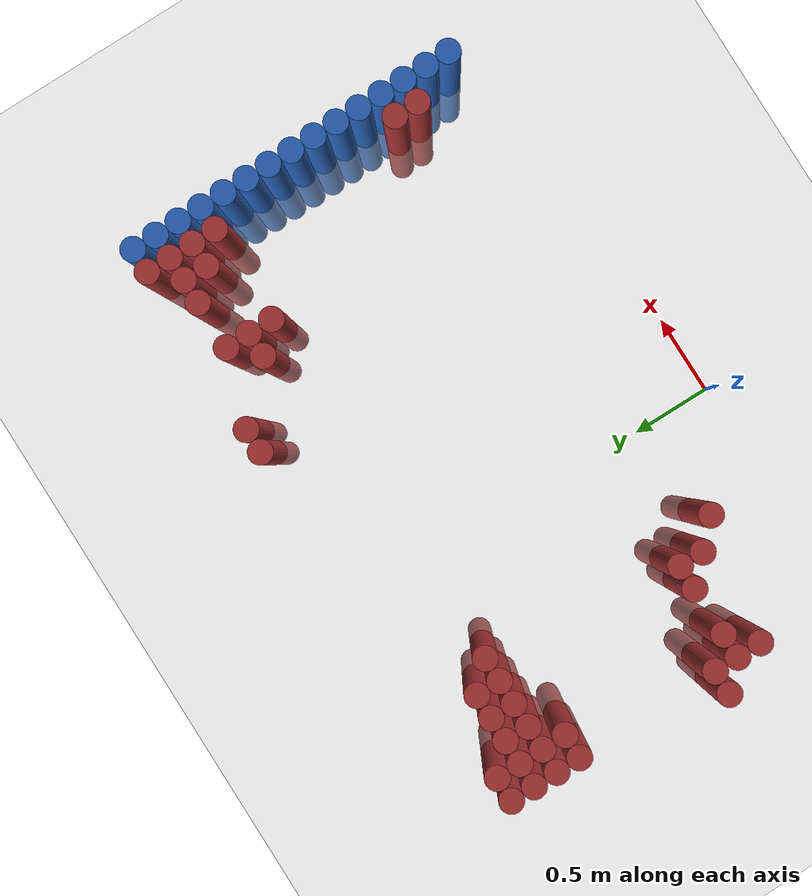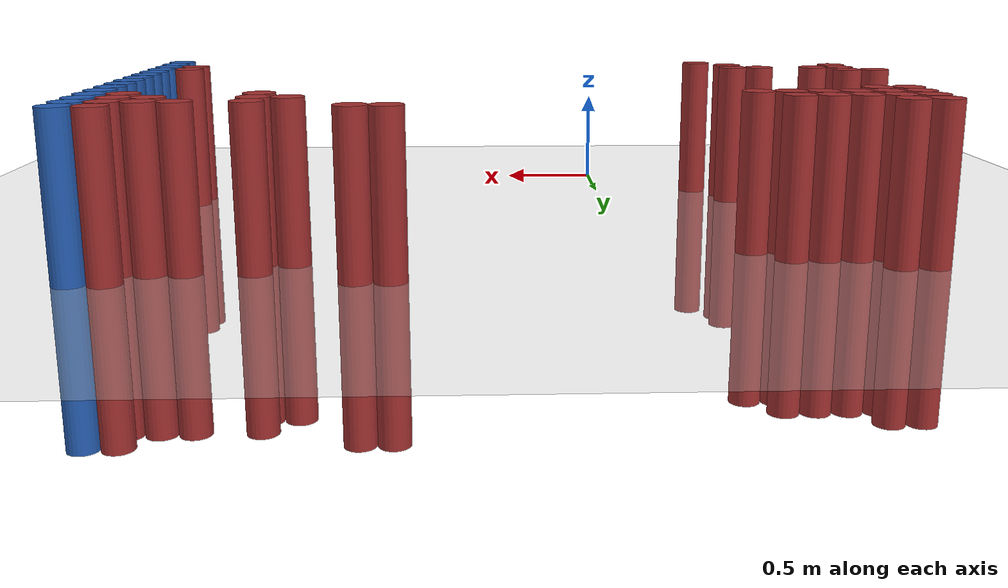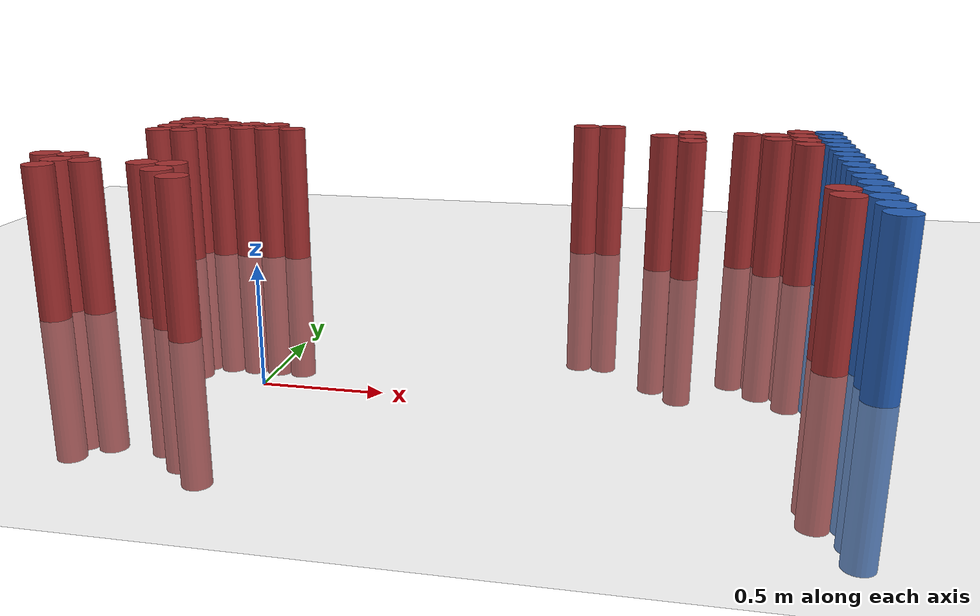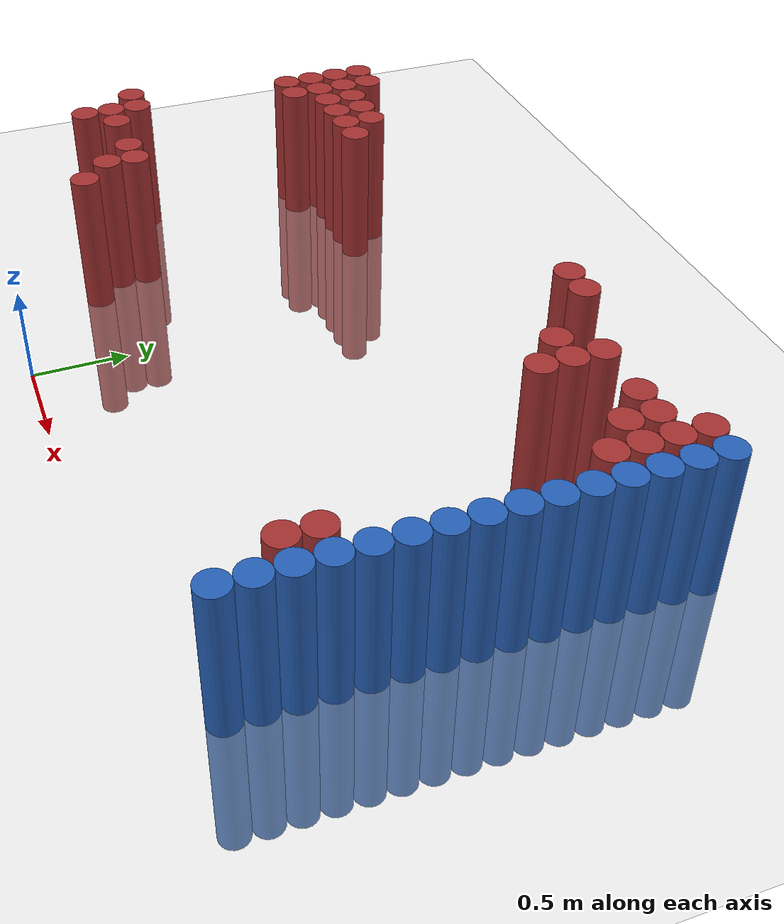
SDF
<sdf version="1.6">
 <world name="default">
  <model name="ground_plane">
   <static>1</static>
   <link name="link">
    <collision name="collision">
     <geometry><plane><normal>0 0 1</normal><size>100 100</size></plane></geometry>
     <surface><friction><ode><mu>100</mu><mu2>50</mu2></ode></friction></surface>
    </collision>
    <visual name="visual">
     <cast_shadows>0</cast_shadows>
     <geometry><plane><normal>0 0 1</normal><size>100 100</size></plane></geometry>
     <material>
      <script><uri>file://media/materials/scripts/gazebo.material</uri><name>Gazebo/Grey</name></script>
     </material>
    </visual>
   </link>
  </model>
  <model name="unit_cylinder_154">
   <static>1</static>
   <pose>-1.475000 0.925000 0.000000 0.000000 0.000000 0.000000</pose>
   <link name="link">
    <inertial>
     <mass>1</mass>
     <inertia><ixx>0.145833</ixx><ixy>0</ixy><ixz>0</ixz><iyy>0.145833</iyy><iyz>0</iyz><izz>0.125</izz></inertia>
    </inertial>
    <collision name="collision">
     <geometry><cylinder><radius>0.075000</radius><length>1.5</length></cylinder></geometry>
    </collision>
    <visual name="visual">
     <geometry><cylinder><radius>0.075000</radius><length>1.5</length></cylinder></geometry>
     <material>
      <ambient>0.648000 0.192000 0.192000 1</ambient>
      <diffuse>0.648000 0.192000 0.192000 1</diffuse>
     </material>
     <material>
      <script><name>Gazebo/Grey</name><uri>file://media/materials/scripts/gazebo.material</uri></script>
     </material>
    </visual>
   </link>
  </model>
  <model name="unit_cylinder_161">
   <static>1</static>
   <pose>-1.325000 0.625000 0.000000 0.000000 0.000000 0.000000</pose>
   <link name="link">
    <inertial>
     <mass>1</mass>
     <inertia><ixx>0.145833</ixx><ixy>0</ixy><ixz>0</ixz><iyy>0.145833</iyy><iyz>0</iyz><izz>0.125</izz></inertia>
    </inertial>
    <collision name="collision">
     <geometry><cylinder><radius>0.075000</radius><length>1.5</length></cylinder></geometry>
    </collision>
    <visual name="visual">
     <geometry><cylinder><radius>0.075000</radius><length>1.5</length></cylinder></geometry>
     <material>
      <ambient>0.648000 0.192000 0.192000 1</ambient>
      <diffuse>0.648000 0.192000 0.192000 1</diffuse>
     </material>
     <material>
      <script><name>Gazebo/Grey</name><uri>file://media/materials/scripts/gazebo.material</uri></script>
     </material>
    </visual>
   </link>
  </model>
  <model name="unit_cylinder_162">
   <static>1</static>
   <pose>-1.325000 0.775000 0.000000 0.000000 0.000000 0.000000</pose>
   <link name="link">
    <inertial>
     <mass>1</mass>
     <inertia><ixx>0.145833</ixx><ixy>0</ixy><ixz>0</ixz><iyy>0.145833</iyy><iyz>0</iyz><izz>0.125</izz></inertia>
    </inertial>
    <collision name="collision">
     <geometry><cylinder><radius>0.075000</radius><length>1.5</length></cylinder></geometry>
    </collision>
    <visual name="visual">
     <geometry><cylinder><radius>0.075000</radius><length>1.5</length></cylinder></geometry>
     <material>
      <ambient>0.648000 0.192000 0.192000 1</ambient>
      <diffuse>0.648000 0.192000 0.192000 1</diffuse>
     </material>
     <material>
      <script><name>Gazebo/Grey</name><uri>file://media/materials/scripts/gazebo.material</uri></script>
     </material>
    </visual>
   </link>
  </model>
  <model name="unit_cylinder_163">
   <static>1</static>
   <pose>-1.325000 0.925000 0.000000 0.000000 0.000000 0.000000</pose>
   <link name="link">
    <inertial>
     <mass>1</mass>
     <inertia><ixx>0.145833</ixx><ixy>0</ixy><ixz>0</ixz><iyy>0.145833</iyy><iyz>0</iyz><izz>0.125</izz></inertia>
    </inertial>
    <collision name="collision">
     <geometry><cylinder><radius>0.075000</radius><length>1.5</length></cylinder></geometry>
    </collision>
    <visual name="visual">
     <geometry><cylinder><radius>0.075000</radius><length>1.5</length></cylinder></geometry>
     <material>
      <ambient>0.648000 0.192000 0.192000 1</ambient>
      <diffuse>0.648000 0.192000 0.192000 1</diffuse>
     </material>
     <material>
      <script><name>Gazebo/Grey</name><uri>file://media/materials/scripts/gazebo.material</uri></script>
     </material>
    </visual>
   </link>
  </model>
  <model name="unit_cylinder_164">
   <static>1</static>
   <pose>-1.325000 1.825000 0.000000 0.000000 0.000000 0.000000</pose>
   <link name="link">
    <inertial>
     <mass>1</mass>
     <inertia><ixx>0.145833</ixx><ixy>0</ixy><ixz>0</ixz><iyy>0.145833</iyy><iyz>0</iyz><izz>0.125</izz></inertia>
    </inertial>
    <collision name="collision">
     <geometry><cylinder><radius>0.075000</radius><length>1.5</length></cylinder></geometry>
    </collision>
    <visual name="visual">
     <geometry><cylinder><radius>0.075000</radius><length>1.5</length></cylinder></geometry>
     <material>
      <ambient>0.648000 0.192000 0.192000 1</ambient>
      <diffuse>0.648000 0.192000 0.192000 1</diffuse>
     </material>
     <material>
      <script><name>Gazebo/Grey</name><uri>file://media/materials/scripts/gazebo.material</uri></script>
     </material>
    </visual>
   </link>
  </model>
  <model name="unit_cylinder_165">
   <static>1</static>
   <pose>-1.325000 1.975000 0.000000 0.000000 0.000000 0.000000</pose>
   <link name="link">
    <inertial>
     <mass>1</mass>
     <inertia><ixx>0.145833</ixx><ixy>0</ixy><ixz>0</ixz><iyy>0.145833</iyy><iyz>0</iyz><izz>0.125</izz></inertia>
    </inertial>
    <collision name="collision">
     <geometry><cylinder><radius>0.075000</radius><length>1.5</length></cylinder></geometry>
    </collision>
    <visual name="visual">
     <geometry><cylinder><radius>0.075000</radius><length>1.5</length></cylinder></geometry>
     <material>
      <ambient>0.648000 0.192000 0.192000 1</ambient>
      <diffuse>0.648000 0.192000 0.192000 1</diffuse>
     </material>
     <material>
      <script><name>Gazebo/Grey</name><uri>file://media/materials/scripts/gazebo.material</uri></script>
     </material>
    </visual>
   </link>
  </model>
  <model name="unit_cylinder_166">
   <static>1</static>
   <pose>-1.325000 2.125000 0.000000 0.000000 0.000000 0.000000</pose>
   <link name="link">
    <inertial>
     <mass>1</mass>
     <inertia><ixx>0.145833</ixx><ixy>0</ixy><ixz>0</ixz><iyy>0.145833</iyy><iyz>0</iyz><izz>0.125</izz></inertia>
    </inertial>
    <collision name="collision">
     <geometry><cylinder><radius>0.075000</radius><length>1.5</length></cylinder></geometry>
    </collision>
    <visual name="visual">
     <geometry><cylinder><radius>0.075000</radius><length>1.5</length></cylinder></geometry>
     <material>
      <ambient>0.648000 0.192000 0.192000 1</ambient>
      <diffuse>0.648000 0.192000 0.192000 1</diffuse>
     </material>
     <material>
      <script><name>Gazebo/Grey</name><uri>file://media/materials/scripts/gazebo.material</uri></script>
     </material>
    </visual>
   </link>
  </model>
  <model name="unit_cylinder_167">
   <static>1</static>
   <pose>-1.325000 2.275000 0.000000 0.000000 0.000000 0.000000</pose>
   <link name="link">
    <inertial>
     <mass>1</mass>
     <inertia><ixx>0.145833</ixx><ixy>0</ixy><ixz>0</ixz><iyy>0.145833</iyy><iyz>0</iyz><izz>0.125</izz></inertia>
    </inertial>
    <collision name="collision">
     <geometry><cylinder><radius>0.075000</radius><length>1.5</length></cylinder></geometry>
    </collision>
    <visual name="visual">
     <geometry><cylinder><radius>0.075000</radius><length>1.5</length></cylinder></geometry>
     <material>
      <ambient>0.648000 0.192000 0.192000 1</ambient>
      <diffuse>0.648000 0.192000 0.192000 1</diffuse>
     </material>
     <material>
      <script><name>Gazebo/Grey</name><uri>file://media/materials/scripts/gazebo.material</uri></script>
     </material>
    </visual>
   </link>
  </model>
  <model name="unit_cylinder_170">
   <static>1</static>
   <pose>-1.175000 0.775000 0.000000 0.000000 0.000000 0.000000</pose>
   <link name="link">
    <inertial>
     <mass>1</mass>
     <inertia><ixx>0.145833</ixx><ixy>0</ixy><ixz>0</ixz><iyy>0.145833</iyy><iyz>0</iyz><izz>0.125</izz></inertia>
    </inertial>
    <collision name="collision">
     <geometry><cylinder><radius>0.075000</radius><length>1.5</length></cylinder></geometry>
    </collision>
    <visual name="visual">
     <geometry><cylinder><radius>0.075000</radius><length>1.5</length></cylinder></geometry>
     <material>
      <ambient>0.648000 0.192000 0.192000 1</ambient>
      <diffuse>0.648000 0.192000 0.192000 1</diffuse>
     </material>
     <material>
      <script><name>Gazebo/Grey</name><uri>file://media/materials/scripts/gazebo.material</uri></script>
     </material>
    </visual>
   </link>
  </model>
  <model name="unit_cylinder_171">
   <static>1</static>
   <pose>-1.175000 1.825000 0.000000 0.000000 0.000000 0.000000</pose>
   <link name="link">
    <inertial>
     <mass>1</mass>
     <inertia><ixx>0.145833</ixx><ixy>0</ixy><ixz>0</ixz><iyy>0.145833</iyy><iyz>0</iyz><izz>0.125</izz></inertia>
    </inertial>
    <collision name="collision">
     <geometry><cylinder><radius>0.075000</radius><length>1.5</length></cylinder></geometry>
    </collision>
    <visual name="visual">
     <geometry><cylinder><radius>0.075000</radius><length>1.5</length></cylinder></geometry>
     <material>
      <ambient>0.648000 0.192000 0.192000 1</ambient>
      <diffuse>0.648000 0.192000 0.192000 1</diffuse>
     </material>
     <material>
      <script><name>Gazebo/Grey</name><uri>file://media/materials/scripts/gazebo.material</uri></script>
     </material>
    </visual>
   </link>
  </model>
  <model name="unit_cylinder_172">
   <static>1</static>
   <pose>-1.175000 1.975000 0.000000 0.000000 0.000000 0.000000</pose>
   <link name="link">
    <inertial>
     <mass>1</mass>
     <inertia><ixx>0.145833</ixx><ixy>0</ixy><ixz>0</ixz><iyy>0.145833</iyy><iyz>0</iyz><izz>0.125</izz></inertia>
    </inertial>
    <collision name="collision">
     <geometry><cylinder><radius>0.075000</radius><length>1.5</length></cylinder></geometry>
    </collision>
    <visual name="visual">
     <geometry><cylinder><radius>0.075000</radius><length>1.5</length></cylinder></geometry>
     <material>
      <ambient>0.648000 0.192000 0.192000 1</ambient>
      <diffuse>0.648000 0.192000 0.192000 1</diffuse>
     </material>
     <material>
      <script><name>Gazebo/Grey</name><uri>file://media/materials/scripts/gazebo.material</uri></script>
     </material>
    </visual>
   </link>
  </model>
  <model name="unit_cylinder_173">
   <static>1</static>
   <pose>-1.175000 2.125000 0.000000 0.000000 0.000000 0.000000</pose>
   <link name="link">
    <inertial>
     <mass>1</mass>
     <inertia><ixx>0.145833</ixx><ixy>0</ixy><ixz>0</ixz><iyy>0.145833</iyy><iyz>0</iyz><izz>0.125</izz></inertia>
    </inertial>
    <collision name="collision">
     <geometry><cylinder><radius>0.075000</radius><length>1.5</length></cylinder></geometry>
    </collision>
    <visual name="visual">
     <geometry><cylinder><radius>0.075000</radius><length>1.5</length></cylinder></geometry>
     <material>
      <ambient>0.648000 0.192000 0.192000 1</ambient>
      <diffuse>0.648000 0.192000 0.192000 1</diffuse>
     </material>
     <material>
      <script><name>Gazebo/Grey</name><uri>file://media/materials/scripts/gazebo.material</uri></script>
     </material>
    </visual>
   </link>
  </model>
  <model name="unit_cylinder_174">
   <static>1</static>
   <pose>-1.175000 2.275000 0.000000 0.000000 0.000000 0.000000</pose>
   <link name="link">
    <inertial>
     <mass>1</mass>
     <inertia><ixx>0.145833</ixx><ixy>0</ixy><ixz>0</ixz><iyy>0.145833</iyy><iyz>0</iyz><izz>0.125</izz></inertia>
    </inertial>
    <collision name="collision">
     <geometry><cylinder><radius>0.075000</radius><length>1.5</length></cylinder></geometry>
    </collision>
    <visual name="visual">
     <geometry><cylinder><radius>0.075000</radius><length>1.5</length></cylinder></geometry>
     <material>
      <ambient>0.648000 0.192000 0.192000 1</ambient>
      <diffuse>0.648000 0.192000 0.192000 1</diffuse>
     </material>
     <material>
      <script><name>Gazebo/Grey</name><uri>file://media/materials/scripts/gazebo.material</uri></script>
     </material>
    </visual>
   </link>
  </model>
  <model name="unit_cylinder_175">
   <static>1</static>
   <pose>-1.025000 1.975000 0.000000 0.000000 0.000000 0.000000</pose>
   <link name="link">
    <inertial>
     <mass>1</mass>
     <inertia><ixx>0.145833</ixx><ixy>0</ixy><ixz>0</ixz><iyy>0.145833</iyy><iyz>0</iyz><izz>0.125</izz></inertia>
    </inertial>
    <collision name="collision">
     <geometry><cylinder><radius>0.075000</radius><length>1.5</length></cylinder></geometry>
    </collision>
    <visual name="visual">
     <geometry><cylinder><radius>0.075000</radius><length>1.5</length></cylinder></geometry>
     <material>
      <ambient>0.648000 0.192000 0.192000 1</ambient>
      <diffuse>0.648000 0.192000 0.192000 1</diffuse>
     </material>
     <material>
      <script><name>Gazebo/Grey</name><uri>file://media/materials/scripts/gazebo.material</uri></script>
     </material>
    </visual>
   </link>
  </model>
  <model name="unit_cylinder_176">
   <static>1</static>
   <pose>-1.025000 2.125000 0.000000 0.000000 0.000000 0.000000</pose>
   <link name="link">
    <inertial>
     <mass>1</mass>
     <inertia><ixx>0.145833</ixx><ixy>0</ixy><ixz>0</ixz><iyy>0.145833</iyy><iyz>0</iyz><izz>0.125</izz></inertia>
    </inertial>
    <collision name="collision">
     <geometry><cylinder><radius>0.075000</radius><length>1.5</length></cylinder></geometry>
    </collision>
    <visual name="visual">
     <geometry><cylinder><radius>0.075000</radius><length>1.5</length></cylinder></geometry>
     <material>
      <ambient>0.648000 0.192000 0.192000 1</ambient>
      <diffuse>0.648000 0.192000 0.192000 1</diffuse>
     </material>
     <material>
      <script><name>Gazebo/Grey</name><uri>file://media/materials/scripts/gazebo.material</uri></script>
     </material>
    </visual>
   </link>
  </model>
  <model name="unit_cylinder_182">
   <static>1</static>
   <pose>-0.875000 0.775000 0.000000 0.000000 0.000000 0.000000</pose>
   <link name="link">
    <inertial>
     <mass>1</mass>
     <inertia><ixx>0.145833</ixx><ixy>0</ixy><ixz>0</ixz><iyy>0.145833</iyy><iyz>0</iyz><izz>0.125</izz></inertia>
    </inertial>
    <collision name="collision">
     <geometry><cylinder><radius>0.075000</radius><length>1.5</length></cylinder></geometry>
    </collision>
    <visual name="visual">
     <geometry><cylinder><radius>0.075000</radius><length>1.5</length></cylinder></geometry>
     <material>
      <ambient>0.648000 0.192000 0.192000 1</ambient>
      <diffuse>0.648000 0.192000 0.192000 1</diffuse>
     </material>
     <material>
      <script><name>Gazebo/Grey</name><uri>file://media/materials/scripts/gazebo.material</uri></script>
     </material>
    </visual>
   </link>
  </model>
  <model name="unit_cylinder_183">
   <static>1</static>
   <pose>-0.875000 1.975000 0.000000 0.000000 0.000000 0.000000</pose>
   <link name="link">
    <inertial>
     <mass>1</mass>
     <inertia><ixx>0.145833</ixx><ixy>0</ixy><ixz>0</ixz><iyy>0.145833</iyy><iyz>0</iyz><izz>0.125</izz></inertia>
    </inertial>
    <collision name="collision">
     <geometry><cylinder><radius>0.075000</radius><length>1.5</length></cylinder></geometry>
    </collision>
    <visual name="visual">
     <geometry><cylinder><radius>0.075000</radius><length>1.5</length></cylinder></geometry>
     <material>
      <ambient>0.648000 0.192000 0.192000 1</ambient>
      <diffuse>0.648000 0.192000 0.192000 1</diffuse>
     </material>
     <material>
      <script><name>Gazebo/Grey</name><uri>file://media/materials/scripts/gazebo.material</uri></script>
     </material>
    </visual>
   </link>
  </model>
  <model name="unit_cylinder_184">
   <static>1</static>
   <pose>-0.875000 2.125000 0.000000 0.000000 0.000000 0.000000</pose>
   <link name="link">
    <inertial>
     <mass>1</mass>
     <inertia><ixx>0.145833</ixx><ixy>0</ixy><ixz>0</ixz><iyy>0.145833</iyy><iyz>0</iyz><izz>0.125</izz></inertia>
    </inertial>
    <collision name="collision">
     <geometry><cylinder><radius>0.075000</radius><length>1.5</length></cylinder></geometry>
    </collision>
    <visual name="visual">
     <geometry><cylinder><radius>0.075000</radius><length>1.5</length></cylinder></geometry>
     <material>
      <ambient>0.648000 0.192000 0.192000 1</ambient>
      <diffuse>0.648000 0.192000 0.192000 1</diffuse>
     </material>
     <material>
      <script><name>Gazebo/Grey</name><uri>file://media/materials/scripts/gazebo.material</uri></script>
     </material>
    </visual>
   </link>
  </model>
  <model name="unit_cylinder_190">
   <static>1</static>
   <pose>-0.725000 0.625000 0.000000 0.000000 0.000000 0.000000</pose>
   <link name="link">
    <inertial>
     <mass>1</mass>
     <inertia><ixx>0.145833</ixx><ixy>0</ixy><ixz>0</ixz><iyy>0.145833</iyy><iyz>0</iyz><izz>0.125</izz></inertia>
    </inertial>
    <collision name="collision">
     <geometry><cylinder><radius>0.075000</radius><length>1.5</length></cylinder></geometry>
    </collision>
    <visual name="visual">
     <geometry><cylinder><radius>0.075000</radius><length>1.5</length></cylinder></geometry>
     <material>
      <ambient>0.648000 0.192000 0.192000 1</ambient>
      <diffuse>0.648000 0.192000 0.192000 1</diffuse>
     </material>
     <material>
      <script><name>Gazebo/Grey</name><uri>file://media/materials/scripts/gazebo.material</uri></script>
     </material>
    </visual>
   </link>
  </model>
  <model name="unit_cylinder_191">
   <static>1</static>
   <pose>-0.725000 0.775000 0.000000 0.000000 0.000000 0.000000</pose>
   <link name="link">
    <inertial>
     <mass>1</mass>
     <inertia><ixx>0.145833</ixx><ixy>0</ixy><ixz>0</ixz><iyy>0.145833</iyy><iyz>0</iyz><izz>0.125</izz></inertia>
    </inertial>
    <collision name="collision">
     <geometry><cylinder><radius>0.075000</radius><length>1.5</length></cylinder></geometry>
    </collision>
    <visual name="visual">
     <geometry><cylinder><radius>0.075000</radius><length>1.5</length></cylinder></geometry>
     <material>
      <ambient>0.648000 0.192000 0.192000 1</ambient>
      <diffuse>0.648000 0.192000 0.192000 1</diffuse>
     </material>
     <material>
      <script><name>Gazebo/Grey</name><uri>file://media/materials/scripts/gazebo.material</uri></script>
     </material>
    </visual>
   </link>
  </model>
  <model name="unit_cylinder_192">
   <static>1</static>
   <pose>-0.725000 1.975000 0.000000 0.000000 0.000000 0.000000</pose>
   <link name="link">
    <inertial>
     <mass>1</mass>
     <inertia><ixx>0.145833</ixx><ixy>0</ixy><ixz>0</ixz><iyy>0.145833</iyy><iyz>0</iyz><izz>0.125</izz></inertia>
    </inertial>
    <collision name="collision">
     <geometry><cylinder><radius>0.075000</radius><length>1.5</length></cylinder></geometry>
    </collision>
    <visual name="visual">
     <geometry><cylinder><radius>0.075000</radius><length>1.5</length></cylinder></geometry>
     <material>
      <ambient>0.648000 0.192000 0.192000 1</ambient>
      <diffuse>0.648000 0.192000 0.192000 1</diffuse>
     </material>
     <material>
      <script><name>Gazebo/Grey</name><uri>file://media/materials/scripts/gazebo.material</uri></script>
     </material>
    </visual>
   </link>
  </model>
  <model name="unit_cylinder_193">
   <static>1</static>
   <pose>-0.725000 2.125000 0.000000 0.000000 0.000000 0.000000</pose>
   <link name="link">
    <inertial>
     <mass>1</mass>
     <inertia><ixx>0.145833</ixx><ixy>0</ixy><ixz>0</ixz><iyy>0.145833</iyy><iyz>0</iyz><izz>0.125</izz></inertia>
    </inertial>
    <collision name="collision">
     <geometry><cylinder><radius>0.075000</radius><length>1.5</length></cylinder></geometry>
    </collision>
    <visual name="visual">
     <geometry><cylinder><radius>0.075000</radius><length>1.5</length></cylinder></geometry>
     <material>
      <ambient>0.648000 0.192000 0.192000 1</ambient>
      <diffuse>0.648000 0.192000 0.192000 1</diffuse>
     </material>
     <material>
      <script><name>Gazebo/Grey</name><uri>file://media/materials/scripts/gazebo.material</uri></script>
     </material>
    </visual>
   </link>
  </model>
  <model name="unit_cylinder_196">
   <static>1</static>
   <pose>-0.575000 0.475000 0.000000 0.000000 0.000000 0.000000</pose>
   <link name="link">
    <inertial>
     <mass>1</mass>
     <inertia><ixx>0.145833</ixx><ixy>0</ixy><ixz>0</ixz><iyy>0.145833</iyy><iyz>0</iyz><izz>0.125</izz></inertia>
    </inertial>
    <collision name="collision">
     <geometry><cylinder><radius>0.075000</radius><length>1.5</length></cylinder></geometry>
    </collision>
    <visual name="visual">
     <geometry><cylinder><radius>0.075000</radius><length>1.5</length></cylinder></geometry>
     <material>
      <ambient>0.648000 0.192000 0.192000 1</ambient>
      <diffuse>0.648000 0.192000 0.192000 1</diffuse>
     </material>
     <material>
      <script><name>Gazebo/Grey</name><uri>file://media/materials/scripts/gazebo.material</uri></script>
     </material>
    </visual>
   </link>
  </model>
  <model name="unit_cylinder_197">
   <static>1</static>
   <pose>-0.575000 1.975000 0.000000 0.000000 0.000000 0.000000</pose>
   <link name="link">
    <inertial>
     <mass>1</mass>
     <inertia><ixx>0.145833</ixx><ixy>0</ixy><ixz>0</ixz><iyy>0.145833</iyy><iyz>0</iyz><izz>0.125</izz></inertia>
    </inertial>
    <collision name="collision">
     <geometry><cylinder><radius>0.075000</radius><length>1.5</length></cylinder></geometry>
    </collision>
    <visual name="visual">
     <geometry><cylinder><radius>0.075000</radius><length>1.5</length></cylinder></geometry>
     <material>
      <ambient>0.648000 0.192000 0.192000 1</ambient>
      <diffuse>0.648000 0.192000 0.192000 1</diffuse>
     </material>
     <material>
      <script><name>Gazebo/Grey</name><uri>file://media/materials/scripts/gazebo.material</uri></script>
     </material>
    </visual>
   </link>
  </model>
  <model name="unit_cylinder_214">
   <static>1</static>
   <pose>1.075000 2.425000 0.000000 0.000000 0.000000 0.000000</pose>
   <link name="link">
    <inertial>
     <mass>1</mass>
     <inertia><ixx>0.145833</ixx><ixy>0</ixy><ixz>0</ixz><iyy>0.145833</iyy><iyz>0</iyz><izz>0.125</izz></inertia>
    </inertial>
    <collision name="collision">
     <geometry><cylinder><radius>0.075000</radius><length>1.5</length></cylinder></geometry>
    </collision>
    <visual name="visual">
     <geometry><cylinder><radius>0.075000</radius><length>1.5</length></cylinder></geometry>
     <material>
      <ambient>0.648000 0.192000 0.192000 1</ambient>
      <diffuse>0.648000 0.192000 0.192000 1</diffuse>
     </material>
     <material>
      <script><name>Gazebo/Grey</name><uri>file://media/materials/scripts/gazebo.material</uri></script>
     </material>
    </visual>
   </link>
  </model>
  <model name="unit_cylinder_216">
   <static>1</static>
   <pose>1.225000 2.425000 0.000000 0.000000 0.000000 0.000000</pose>
   <link name="link">
    <inertial>
     <mass>1</mass>
     <inertia><ixx>0.145833</ixx><ixy>0</ixy><ixz>0</ixz><iyy>0.145833</iyy><iyz>0</iyz><izz>0.125</izz></inertia>
    </inertial>
    <collision name="collision">
     <geometry><cylinder><radius>0.075000</radius><length>1.5</length></cylinder></geometry>
    </collision>
    <visual name="visual">
     <geometry><cylinder><radius>0.075000</radius><length>1.5</length></cylinder></geometry>
     <material>
      <ambient>0.648000 0.192000 0.192000 1</ambient>
      <diffuse>0.648000 0.192000 0.192000 1</diffuse>
     </material>
     <material>
      <script><name>Gazebo/Grey</name><uri>file://media/materials/scripts/gazebo.material</uri></script>
     </material>
    </visual>
   </link>
  </model>
  <model name="unit_cylinder_217">
   <static>1</static>
   <pose>1.525000 2.125000 0.000000 0.000000 0.000000 0.000000</pose>
   <link name="link">
    <inertial>
     <mass>1</mass>
     <inertia><ixx>0.145833</ixx><ixy>0</ixy><ixz>0</ixz><iyy>0.145833</iyy><iyz>0</iyz><izz>0.125</izz></inertia>
    </inertial>
    <collision name="collision">
     <geometry><cylinder><radius>0.075000</radius><length>1.5</length></cylinder></geometry>
    </collision>
    <visual name="visual">
     <geometry><cylinder><radius>0.075000</radius><length>1.5</length></cylinder></geometry>
     <material>
      <ambient>0.648000 0.192000 0.192000 1</ambient>
      <diffuse>0.648000 0.192000 0.192000 1</diffuse>
     </material>
     <material>
      <script><name>Gazebo/Grey</name><uri>file://media/materials/scripts/gazebo.material</uri></script>
     </material>
    </visual>
   </link>
  </model>
  <model name="unit_cylinder_218">
   <static>1</static>
   <pose>1.675000 1.975000 0.000000 0.000000 0.000000 0.000000</pose>
   <link name="link">
    <inertial>
     <mass>1</mass>
     <inertia><ixx>0.145833</ixx><ixy>0</ixy><ixz>0</ixz><iyy>0.145833</iyy><iyz>0</iyz><izz>0.125</izz></inertia>
    </inertial>
    <collision name="collision">
     <geometry><cylinder><radius>0.075000</radius><length>1.5</length></cylinder></geometry>
    </collision>
    <visual name="visual">
     <geometry><cylinder><radius>0.075000</radius><length>1.5</length></cylinder></geometry>
     <material>
      <ambient>0.648000 0.192000 0.192000 1</ambient>
      <diffuse>0.648000 0.192000 0.192000 1</diffuse>
     </material>
     <material>
      <script><name>Gazebo/Grey</name><uri>file://media/materials/scripts/gazebo.material</uri></script>
     </material>
    </visual>
   </link>
  </model>
  <model name="unit_cylinder_219">
   <static>1</static>
   <pose>1.675000 2.125000 0.000000 0.000000 0.000000 0.000000</pose>
   <link name="link">
    <inertial>
     <mass>1</mass>
     <inertia><ixx>0.145833</ixx><ixy>0</ixy><ixz>0</ixz><iyy>0.145833</iyy><iyz>0</iyz><izz>0.125</izz></inertia>
    </inertial>
    <collision name="collision">
     <geometry><cylinder><radius>0.075000</radius><length>1.5</length></cylinder></geometry>
    </collision>
    <visual name="visual">
     <geometry><cylinder><radius>0.075000</radius><length>1.5</length></cylinder></geometry>
     <material>
      <ambient>0.648000 0.192000 0.192000 1</ambient>
      <diffuse>0.648000 0.192000 0.192000 1</diffuse>
     </material>
     <material>
      <script><name>Gazebo/Grey</name><uri>file://media/materials/scripts/gazebo.material</uri></script>
     </material>
    </visual>
   </link>
  </model>
  <model name="unit_cylinder_220">
   <static>1</static>
   <pose>1.675000 2.275000 0.000000 0.000000 0.000000 0.000000</pose>
   <link name="link">
    <inertial>
     <mass>1</mass>
     <inertia><ixx>0.145833</ixx><ixy>0</ixy><ixz>0</ixz><iyy>0.145833</iyy><iyz>0</iyz><izz>0.125</izz></inertia>
    </inertial>
    <collision name="collision">
     <geometry><cylinder><radius>0.075000</radius><length>1.5</length></cylinder></geometry>
    </collision>
    <visual name="visual">
     <geometry><cylinder><radius>0.075000</radius><length>1.5</length></cylinder></geometry>
     <material>
      <ambient>0.648000 0.192000 0.192000 1</ambient>
      <diffuse>0.648000 0.192000 0.192000 1</diffuse>
     </material>
     <material>
      <script><name>Gazebo/Grey</name><uri>file://media/materials/scripts/gazebo.material</uri></script>
     </material>
    </visual>
   </link>
  </model>
  <model name="unit_cylinder_222">
   <static>1</static>
   <pose>1.975000 2.275000 0.000000 0.000000 0.000000 0.000000</pose>
   <link name="link">
    <inertial>
     <mass>1</mass>
     <inertia><ixx>0.145833</ixx><ixy>0</ixy><ixz>0</ixz><iyy>0.145833</iyy><iyz>0</iyz><izz>0.125</izz></inertia>
    </inertial>
    <collision name="collision">
     <geometry><cylinder><radius>0.075000</radius><length>1.5</length></cylinder></geometry>
    </collision>
    <visual name="visual">
     <geometry><cylinder><radius>0.075000</radius><length>1.5</length></cylinder></geometry>
     <material>
      <ambient>0.648000 0.192000 0.192000 1</ambient>
      <diffuse>0.648000 0.192000 0.192000 1</diffuse>
     </material>
     <material>
      <script><name>Gazebo/Grey</name><uri>file://media/materials/scripts/gazebo.material</uri></script>
     </material>
    </visual>
   </link>
  </model>
  <model name="unit_cylinder_227">
   <static>1</static>
   <pose>2.125000 2.125000 0.000000 0.000000 0.000000 0.000000</pose>
   <link name="link">
    <inertial>
     <mass>1</mass>
     <inertia><ixx>0.145833</ixx><ixy>0</ixy><ixz>0</ixz><iyy>0.145833</iyy><iyz>0</iyz><izz>0.125</izz></inertia>
    </inertial>
    <collision name="collision">
     <geometry><cylinder><radius>0.075000</radius><length>1.5</length></cylinder></geometry>
    </collision>
    <visual name="visual">
     <geometry><cylinder><radius>0.075000</radius><length>1.5</length></cylinder></geometry>
     <material>
      <ambient>0.648000 0.192000 0.192000 1</ambient>
      <diffuse>0.648000 0.192000 0.192000 1</diffuse>
     </material>
     <material>
      <script><name>Gazebo/Grey</name><uri>file://media/materials/scripts/gazebo.material</uri></script>
     </material>
    </visual>
   </link>
  </model>
  <model name="unit_cylinder_228">
   <static>1</static>
   <pose>2.125000 2.275000 0.000000 0.000000 0.000000 0.000000</pose>
   <link name="link">
    <inertial>
     <mass>1</mass>
     <inertia><ixx>0.145833</ixx><ixy>0</ixy><ixz>0</ixz><iyy>0.145833</iyy><iyz>0</iyz><izz>0.125</izz></inertia>
    </inertial>
    <collision name="collision">
     <geometry><cylinder><radius>0.075000</radius><length>1.5</length></cylinder></geometry>
    </collision>
    <visual name="visual">
     <geometry><cylinder><radius>0.075000</radius><length>1.5</length></cylinder></geometry>
     <material>
      <ambient>0.648000 0.192000 0.192000 1</ambient>
      <diffuse>0.648000 0.192000 0.192000 1</diffuse>
     </material>
     <material>
      <script><name>Gazebo/Grey</name><uri>file://media/materials/scripts/gazebo.material</uri></script>
     </material>
    </visual>
   </link>
  </model>
  <model name="unit_cylinder_230">
   <static>1</static>
   <pose>2.275000 0.625000 0.000000 0.000000 0.000000 0.000000</pose>
   <link name="link">
    <inertial>
     <mass>1</mass>
     <inertia><ixx>0.145833</ixx><ixy>0</ixy><ixz>0</ixz><iyy>0.145833</iyy><iyz>0</iyz><izz>0.125</izz></inertia>
    </inertial>
    <collision name="collision">
     <geometry><cylinder><radius>0.075000</radius><length>1.5</length></cylinder></geometry>
    </collision>
    <visual name="visual">
     <geometry><cylinder><radius>0.075000</radius><length>1.5</length></cylinder></geometry>
     <material>
      <ambient>0.648000 0.192000 0.192000 1</ambient>
      <diffuse>0.648000 0.192000 0.192000 1</diffuse>
     </material>
     <material>
      <script><name>Gazebo/Grey</name><uri>file://media/materials/scripts/gazebo.material</uri></script>
     </material>
    </visual>
   </link>
  </model>
  <model name="unit_cylinder_231">
   <static>1</static>
   <pose>2.275000 0.775000 0.000000 0.000000 0.000000 0.000000</pose>
   <link name="link">
    <inertial>
     <mass>1</mass>
     <inertia><ixx>0.145833</ixx><ixy>0</ixy><ixz>0</ixz><iyy>0.145833</iyy><iyz>0</iyz><izz>0.125</izz></inertia>
    </inertial>
    <collision name="collision">
     <geometry><cylinder><radius>0.075000</radius><length>1.5</length></cylinder></geometry>
    </collision>
    <visual name="visual">
     <geometry><cylinder><radius>0.075000</radius><length>1.5</length></cylinder></geometry>
     <material>
      <ambient>0.648000 0.192000 0.192000 1</ambient>
      <diffuse>0.648000 0.192000 0.192000 1</diffuse>
     </material>
     <material>
      <script><name>Gazebo/Grey</name><uri>file://media/materials/scripts/gazebo.material</uri></script>
     </material>
    </visual>
   </link>
  </model>
  <model name="unit_cylinder_232">
   <static>1</static>
   <pose>2.275000 1.975000 0.000000 0.000000 0.000000 0.000000</pose>
   <link name="link">
    <inertial>
     <mass>1</mass>
     <inertia><ixx>0.145833</ixx><ixy>0</ixy><ixz>0</ixz><iyy>0.145833</iyy><iyz>0</iyz><izz>0.125</izz></inertia>
    </inertial>
    <collision name="collision">
     <geometry><cylinder><radius>0.075000</radius><length>1.5</length></cylinder></geometry>
    </collision>
    <visual name="visual">
     <geometry><cylinder><radius>0.075000</radius><length>1.5</length></cylinder></geometry>
     <material>
      <ambient>0.648000 0.192000 0.192000 1</ambient>
      <diffuse>0.648000 0.192000 0.192000 1</diffuse>
     </material>
     <material>
      <script><name>Gazebo/Grey</name><uri>file://media/materials/scripts/gazebo.material</uri></script>
     </material>
    </visual>
   </link>
  </model>
  <model name="unit_cylinder_233">
   <static>1</static>
   <pose>2.275000 2.125000 0.000000 0.000000 0.000000 0.000000</pose>
   <link name="link">
    <inertial>
     <mass>1</mass>
     <inertia><ixx>0.145833</ixx><ixy>0</ixy><ixz>0</ixz><iyy>0.145833</iyy><iyz>0</iyz><izz>0.125</izz></inertia>
    </inertial>
    <collision name="collision">
     <geometry><cylinder><radius>0.075000</radius><length>1.5</length></cylinder></geometry>
    </collision>
    <visual name="visual">
     <geometry><cylinder><radius>0.075000</radius><length>1.5</length></cylinder></geometry>
     <material>
      <ambient>0.648000 0.192000 0.192000 1</ambient>
      <diffuse>0.648000 0.192000 0.192000 1</diffuse>
     </material>
     <material>
      <script><name>Gazebo/Grey</name><uri>file://media/materials/scripts/gazebo.material</uri></script>
     </material>
    </visual>
   </link>
  </model>
  <model name="unit_cylinder_234">
   <static>1</static>
   <pose>2.275000 2.275000 0.000000 0.000000 0.000000 0.000000</pose>
   <link name="link">
    <inertial>
     <mass>1</mass>
     <inertia><ixx>0.145833</ixx><ixy>0</ixy><ixz>0</ixz><iyy>0.145833</iyy><iyz>0</iyz><izz>0.125</izz></inertia>
    </inertial>
    <collision name="collision">
     <geometry><cylinder><radius>0.075000</radius><length>1.5</length></cylinder></geometry>
    </collision>
    <visual name="visual">
     <geometry><cylinder><radius>0.075000</radius><length>1.5</length></cylinder></geometry>
     <material>
      <ambient>0.648000 0.192000 0.192000 1</ambient>
      <diffuse>0.648000 0.192000 0.192000 1</diffuse>
     </material>
     <material>
      <script><name>Gazebo/Grey</name><uri>file://media/materials/scripts/gazebo.material</uri></script>
     </material>
    </visual>
   </link>
  </model>
  <model name="unit_cylinder_235">
   <static>1</static>
   <pose>2.275000 2.425000 0.000000 0.000000 0.000000 0.000000</pose>
   <link name="link">
    <inertial>
     <mass>1</mass>
     <inertia><ixx>0.145833</ixx><ixy>0</ixy><ixz>0</ixz><iyy>0.145833</iyy><iyz>0</iyz><izz>0.125</izz></inertia>
    </inertial>
    <collision name="collision">
     <geometry><cylinder><radius>0.075000</radius><length>1.5</length></cylinder></geometry>
    </collision>
    <visual name="visual">
     <geometry><cylinder><radius>0.075000</radius><length>1.5</length></cylinder></geometry>
     <material>
      <ambient>0.648000 0.192000 0.192000 1</ambient>
      <diffuse>0.648000 0.192000 0.192000 1</diffuse>
     </material>
     <material>
      <script><name>Gazebo/Grey</name><uri>file://media/materials/scripts/gazebo.material</uri></script>
     </material>
    </visual>
   </link>
  </model>
  <model name="unit_cylinder_240">
   <static>1</static>
   <pose>2.425000 0.325000 0.000000 0.000000 0.000000 0.000000</pose>
   <link name="link">
    <inertial>
     <mass>1</mass>
     <inertia><ixx>0.145833</ixx><ixy>0</ixy><ixz>0</ixz><iyy>0.145833</iyy><iyz>0</iyz><izz>0.125</izz></inertia>
    </inertial>
    <collision name="collision">
     <geometry><cylinder><radius>0.075000</radius><length>1.5</length></cylinder></geometry>
    </collision>
    <visual name="visual">
     <geometry><cylinder><radius>0.075000</radius><length>1.5</length></cylinder></geometry>
     <material>
      <ambient>0.152000 0.379000 0.720000 1</ambient>
      <diffuse>0.152000 0.379000 0.720000 1</diffuse>
     </material>
     <material>
      <script><name>Gazebo/Grey</name><uri>file://media/materials/scripts/gazebo.material</uri></script>
     </material>
    </visual>
   </link>
  </model>
  <model name="unit_cylinder_241">
   <static>1</static>
   <pose>2.425000 0.475000 0.000000 0.000000 0.000000 0.000000</pose>
   <link name="link">
    <inertial>
     <mass>1</mass>
     <inertia><ixx>0.145833</ixx><ixy>0</ixy><ixz>0</ixz><iyy>0.145833</iyy><iyz>0</iyz><izz>0.125</izz></inertia>
    </inertial>
    <collision name="collision">
     <geometry><cylinder><radius>0.075000</radius><length>1.5</length></cylinder></geometry>
    </collision>
    <visual name="visual">
     <geometry><cylinder><radius>0.075000</radius><length>1.5</length></cylinder></geometry>
     <material>
      <ambient>0.152000 0.379000 0.720000 1</ambient>
      <diffuse>0.152000 0.379000 0.720000 1</diffuse>
     </material>
     <material>
      <script><name>Gazebo/Grey</name><uri>file://media/materials/scripts/gazebo.material</uri></script>
     </material>
    </visual>
   </link>
  </model>
  <model name="unit_cylinder_242">
   <static>1</static>
   <pose>2.425000 0.625000 0.000000 0.000000 0.000000 0.000000</pose>
   <link name="link">
    <inertial>
     <mass>1</mass>
     <inertia><ixx>0.145833</ixx><ixy>0</ixy><ixz>0</ixz><iyy>0.145833</iyy><iyz>0</iyz><izz>0.125</izz></inertia>
    </inertial>
    <collision name="collision">
     <geometry><cylinder><radius>0.075000</radius><length>1.5</length></cylinder></geometry>
    </collision>
    <visual name="visual">
     <geometry><cylinder><radius>0.075000</radius><length>1.5</length></cylinder></geometry>
     <material>
      <ambient>0.152000 0.379000 0.720000 1</ambient>
      <diffuse>0.152000 0.379000 0.720000 1</diffuse>
     </material>
     <material>
      <script><name>Gazebo/Grey</name><uri>file://media/materials/scripts/gazebo.material</uri></script>
     </material>
    </visual>
   </link>
  </model>
  <model name="unit_cylinder_243">
   <static>1</static>
   <pose>2.425000 0.775000 0.000000 0.000000 0.000000 0.000000</pose>
   <link name="link">
    <inertial>
     <mass>1</mass>
     <inertia><ixx>0.145833</ixx><ixy>0</ixy><ixz>0</ixz><iyy>0.145833</iyy><iyz>0</iyz><izz>0.125</izz></inertia>
    </inertial>
    <collision name="collision">
     <geometry><cylinder><radius>0.075000</radius><length>1.5</length></cylinder></geometry>
    </collision>
    <visual name="visual">
     <geometry><cylinder><radius>0.075000</radius><length>1.5</length></cylinder></geometry>
     <material>
      <ambient>0.152000 0.379000 0.720000 1</ambient>
      <diffuse>0.152000 0.379000 0.720000 1</diffuse>
     </material>
     <material>
      <script><name>Gazebo/Grey</name><uri>file://media/materials/scripts/gazebo.material</uri></script>
     </material>
    </visual>
   </link>
  </model>
  <model name="unit_cylinder_244">
   <static>1</static>
   <pose>2.425000 0.925000 0.000000 0.000000 0.000000 0.000000</pose>
   <link name="link">
    <inertial>
     <mass>1</mass>
     <inertia><ixx>0.145833</ixx><ixy>0</ixy><ixz>0</ixz><iyy>0.145833</iyy><iyz>0</iyz><izz>0.125</izz></inertia>
    </inertial>
    <collision name="collision">
     <geometry><cylinder><radius>0.075000</radius><length>1.5</length></cylinder></geometry>
    </collision>
    <visual name="visual">
     <geometry><cylinder><radius>0.075000</radius><length>1.5</length></cylinder></geometry>
     <material>
      <ambient>0.152000 0.379000 0.720000 1</ambient>
      <diffuse>0.152000 0.379000 0.720000 1</diffuse>
     </material>
     <material>
      <script><name>Gazebo/Grey</name><uri>file://media/materials/scripts/gazebo.material</uri></script>
     </material>
    </visual>
   </link>
  </model>
  <model name="unit_cylinder_245">
   <static>1</static>
   <pose>2.425000 1.075000 0.000000 0.000000 0.000000 0.000000</pose>
   <link name="link">
    <inertial>
     <mass>1</mass>
     <inertia><ixx>0.145833</ixx><ixy>0</ixy><ixz>0</ixz><iyy>0.145833</iyy><iyz>0</iyz><izz>0.125</izz></inertia>
    </inertial>
    <collision name="collision">
     <geometry><cylinder><radius>0.075000</radius><length>1.5</length></cylinder></geometry>
    </collision>
    <visual name="visual">
     <geometry><cylinder><radius>0.075000</radius><length>1.5</length></cylinder></geometry>
     <material>
      <ambient>0.152000 0.379000 0.720000 1</ambient>
      <diffuse>0.152000 0.379000 0.720000 1</diffuse>
     </material>
     <material>
      <script><name>Gazebo/Grey</name><uri>file://media/materials/scripts/gazebo.material</uri></script>
     </material>
    </visual>
   </link>
  </model>
  <model name="unit_cylinder_246">
   <static>1</static>
   <pose>2.425000 1.225000 0.000000 0.000000 0.000000 0.000000</pose>
   <link name="link">
    <inertial>
     <mass>1</mass>
     <inertia><ixx>0.145833</ixx><ixy>0</ixy><ixz>0</ixz><iyy>0.145833</iyy><iyz>0</iyz><izz>0.125</izz></inertia>
    </inertial>
    <collision name="collision">
     <geometry><cylinder><radius>0.075000</radius><length>1.5</length></cylinder></geometry>
    </collision>
    <visual name="visual">
     <geometry><cylinder><radius>0.075000</radius><length>1.5</length></cylinder></geometry>
     <material>
      <ambient>0.152000 0.379000 0.720000 1</ambient>
      <diffuse>0.152000 0.379000 0.720000 1</diffuse>
     </material>
     <material>
      <script><name>Gazebo/Grey</name><uri>file://media/materials/scripts/gazebo.material</uri></script>
     </material>
    </visual>
   </link>
  </model>
  <model name="unit_cylinder_247">
   <static>1</static>
   <pose>2.425000 1.375000 0.000000 0.000000 0.000000 0.000000</pose>
   <link name="link">
    <inertial>
     <mass>1</mass>
     <inertia><ixx>0.145833</ixx><ixy>0</ixy><ixz>0</ixz><iyy>0.145833</iyy><iyz>0</iyz><izz>0.125</izz></inertia>
    </inertial>
    <collision name="collision">
     <geometry><cylinder><radius>0.075000</radius><length>1.5</length></cylinder></geometry>
    </collision>
    <visual name="visual">
     <geometry><cylinder><radius>0.075000</radius><length>1.5</length></cylinder></geometry>
     <material>
      <ambient>0.152000 0.379000 0.720000 1</ambient>
      <diffuse>0.152000 0.379000 0.720000 1</diffuse>
     </material>
     <material>
      <script><name>Gazebo/Grey</name><uri>file://media/materials/scripts/gazebo.material</uri></script>
     </material>
    </visual>
   </link>
  </model>
  <model name="unit_cylinder_248">
   <static>1</static>
   <pose>2.425000 1.525000 0.000000 0.000000 0.000000 0.000000</pose>
   <link name="link">
    <inertial>
     <mass>1</mass>
     <inertia><ixx>0.145833</ixx><ixy>0</ixy><ixz>0</ixz><iyy>0.145833</iyy><iyz>0</iyz><izz>0.125</izz></inertia>
    </inertial>
    <collision name="collision">
     <geometry><cylinder><radius>0.075000</radius><length>1.5</length></cylinder></geometry>
    </collision>
    <visual name="visual">
     <geometry><cylinder><radius>0.075000</radius><length>1.5</length></cylinder></geometry>
     <material>
      <ambient>0.152000 0.379000 0.720000 1</ambient>
      <diffuse>0.152000 0.379000 0.720000 1</diffuse>
     </material>
     <material>
      <script><name>Gazebo/Grey</name><uri>file://media/materials/scripts/gazebo.material</uri></script>
     </material>
    </visual>
   </link>
  </model>
  <model name="unit_cylinder_249">
   <static>1</static>
   <pose>2.425000 1.675000 0.000000 0.000000 0.000000 0.000000</pose>
   <link name="link">
    <inertial>
     <mass>1</mass>
     <inertia><ixx>0.145833</ixx><ixy>0</ixy><ixz>0</ixz><iyy>0.145833</iyy><iyz>0</iyz><izz>0.125</izz></inertia>
    </inertial>
    <collision name="collision">
     <geometry><cylinder><radius>0.075000</radius><length>1.5</length></cylinder></geometry>
    </collision>
    <visual name="visual">
     <geometry><cylinder><radius>0.075000</radius><length>1.5</length></cylinder></geometry>
     <material>
      <ambient>0.152000 0.379000 0.720000 1</ambient>
      <diffuse>0.152000 0.379000 0.720000 1</diffuse>
     </material>
     <material>
      <script><name>Gazebo/Grey</name><uri>file://media/materials/scripts/gazebo.material</uri></script>
     </material>
    </visual>
   </link>
  </model>
  <model name="unit_cylinder_250">
   <static>1</static>
   <pose>2.425000 1.825000 0.000000 0.000000 0.000000 0.000000</pose>
   <link name="link">
    <inertial>
     <mass>1</mass>
     <inertia><ixx>0.145833</ixx><ixy>0</ixy><ixz>0</ixz><iyy>0.145833</iyy><iyz>0</iyz><izz>0.125</izz></inertia>
    </inertial>
    <collision name="collision">
     <geometry><cylinder><radius>0.075000</radius><length>1.5</length></cylinder></geometry>
    </collision>
    <visual name="visual">
     <geometry><cylinder><radius>0.075000</radius><length>1.5</length></cylinder></geometry>
     <material>
      <ambient>0.152000 0.379000 0.720000 1</ambient>
      <diffuse>0.152000 0.379000 0.720000 1</diffuse>
     </material>
     <material>
      <script><name>Gazebo/Grey</name><uri>file://media/materials/scripts/gazebo.material</uri></script>
     </material>
    </visual>
   </link>
  </model>
  <model name="unit_cylinder_251">
   <static>1</static>
   <pose>2.425000 1.975000 0.000000 0.000000 0.000000 0.000000</pose>
   <link name="link">
    <inertial>
     <mass>1</mass>
     <inertia><ixx>0.145833</ixx><ixy>0</ixy><ixz>0</ixz><iyy>0.145833</iyy><iyz>0</iyz><izz>0.125</izz></inertia>
    </inertial>
    <collision name="collision">
     <geometry><cylinder><radius>0.075000</radius><length>1.5</length></cylinder></geometry>
    </collision>
    <visual name="visual">
     <geometry><cylinder><radius>0.075000</radius><length>1.5</length></cylinder></geometry>
     <material>
      <ambient>0.152000 0.379000 0.720000 1</ambient>
      <diffuse>0.152000 0.379000 0.720000 1</diffuse>
     </material>
     <material>
      <script><name>Gazebo/Grey</name><uri>file://media/materials/scripts/gazebo.material</uri></script>
     </material>
    </visual>
   </link>
  </model>
  <model name="unit_cylinder_252">
   <static>1</static>
   <pose>2.425000 2.125000 0.000000 0.000000 0.000000 0.000000</pose>
   <link name="link">
    <inertial>
     <mass>1</mass>
     <inertia><ixx>0.145833</ixx><ixy>0</ixy><ixz>0</ixz><iyy>0.145833</iyy><iyz>0</iyz><izz>0.125</izz></inertia>
    </inertial>
    <collision name="collision">
     <geometry><cylinder><radius>0.075000</radius><length>1.5</length></cylinder></geometry>
    </collision>
    <visual name="visual">
     <geometry><cylinder><radius>0.075000</radius><length>1.5</length></cylinder></geometry>
     <material>
      <ambient>0.152000 0.379000 0.720000 1</ambient>
      <diffuse>0.152000 0.379000 0.720000 1</diffuse>
     </material>
     <material>
      <script><name>Gazebo/Grey</name><uri>file://media/materials/scripts/gazebo.material</uri></script>
     </material>
    </visual>
   </link>
  </model>
  <model name="unit_cylinder_253">
   <static>1</static>
   <pose>2.425000 2.275000 0.000000 0.000000 0.000000 0.000000</pose>
   <link name="link">
    <inertial>
     <mass>1</mass>
     <inertia><ixx>0.145833</ixx><ixy>0</ixy><ixz>0</ixz><iyy>0.145833</iyy><iyz>0</iyz><izz>0.125</izz></inertia>
    </inertial>
    <collision name="collision">
     <geometry><cylinder><radius>0.075000</radius><length>1.5</length></cylinder></geometry>
    </collision>
    <visual name="visual">
     <geometry><cylinder><radius>0.075000</radius><length>1.5</length></cylinder></geometry>
     <material>
      <ambient>0.152000 0.379000 0.720000 1</ambient>
      <diffuse>0.152000 0.379000 0.720000 1</diffuse>
     </material>
     <material>
      <script><name>Gazebo/Grey</name><uri>file://media/materials/scripts/gazebo.material</uri></script>
     </material>
    </visual>
   </link>
  </model>
  <model name="unit_cylinder_254">
   <static>1</static>
   <pose>2.425000 2.425000 0.000000 0.000000 0.000000 0.000000</pose>
   <link name="link">
    <inertial>
     <mass>1</mass>
     <inertia><ixx>0.145833</ixx><ixy>0</ixy><ixz>0</ixz><iyy>0.145833</iyy><iyz>0</iyz><izz>0.125</izz></inertia>
    </inertial>
    <collision name="collision">
     <geometry><cylinder><radius>0.075000</radius><length>1.5</length></cylinder></geometry>
    </collision>
    <visual name="visual">
     <geometry><cylinder><radius>0.075000</radius><length>1.5</length></cylinder></geometry>
     <material>
      <ambient>0.152000 0.379000 0.720000 1</ambient>
      <diffuse>0.152000 0.379000 0.720000 1</diffuse>
     </material>
     <material>
      <script><name>Gazebo/Grey</name><uri>file://media/materials/scripts/gazebo.material</uri></script>
     </material>
    </visual>
   </link>
  </model>
 </world>
</sdf>
